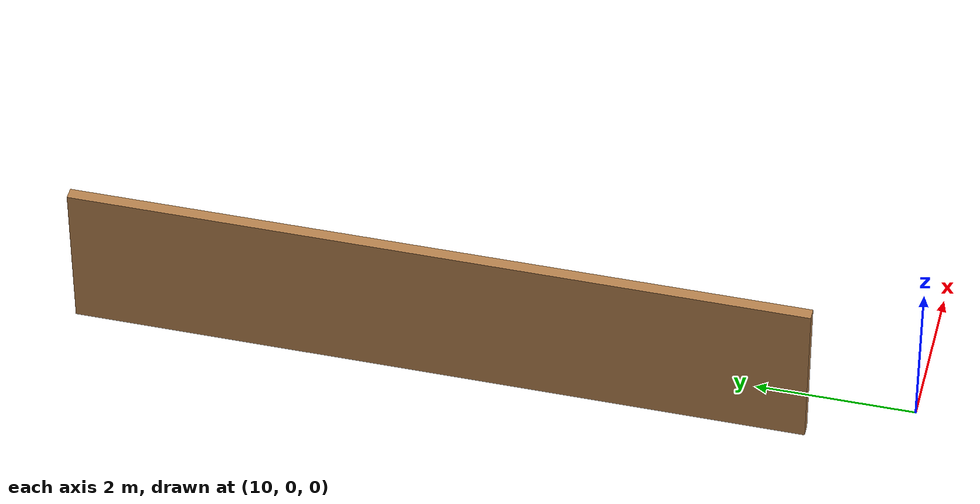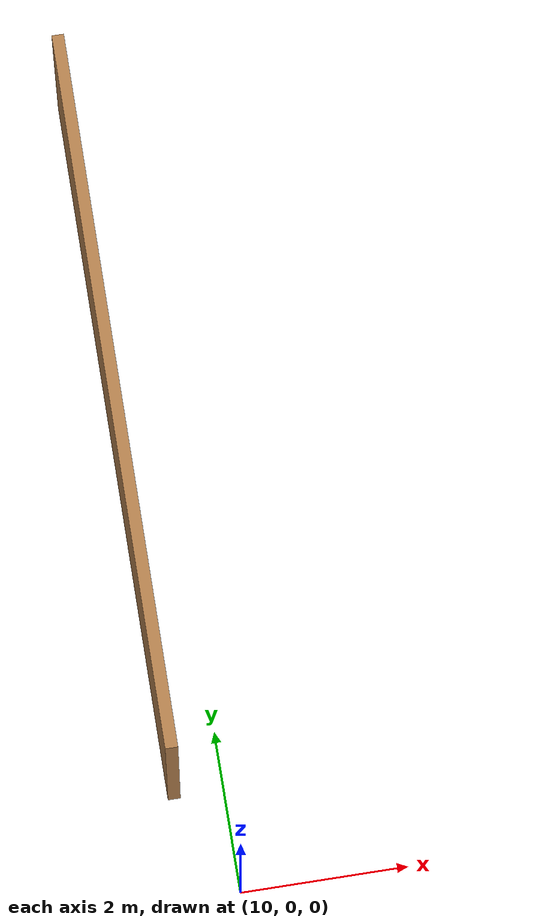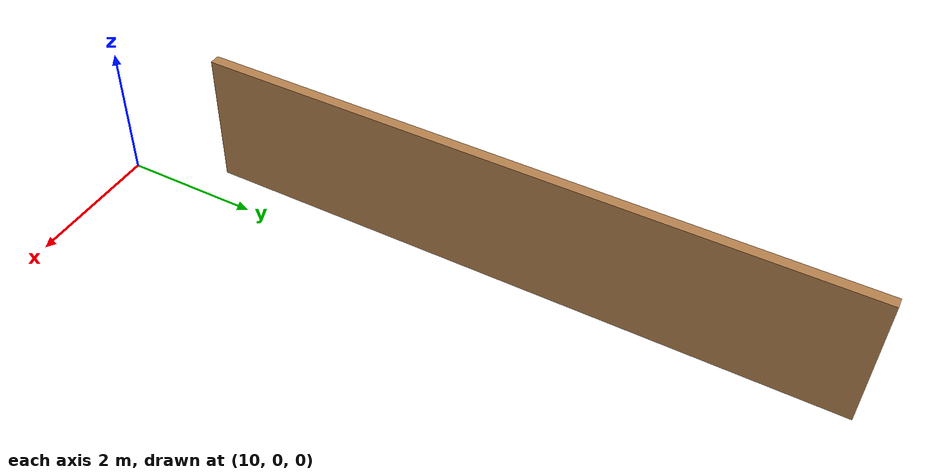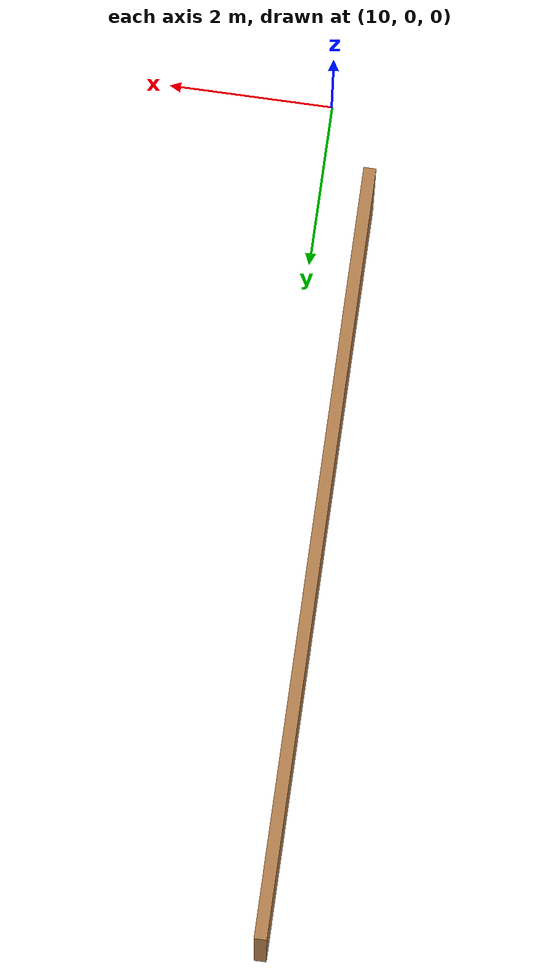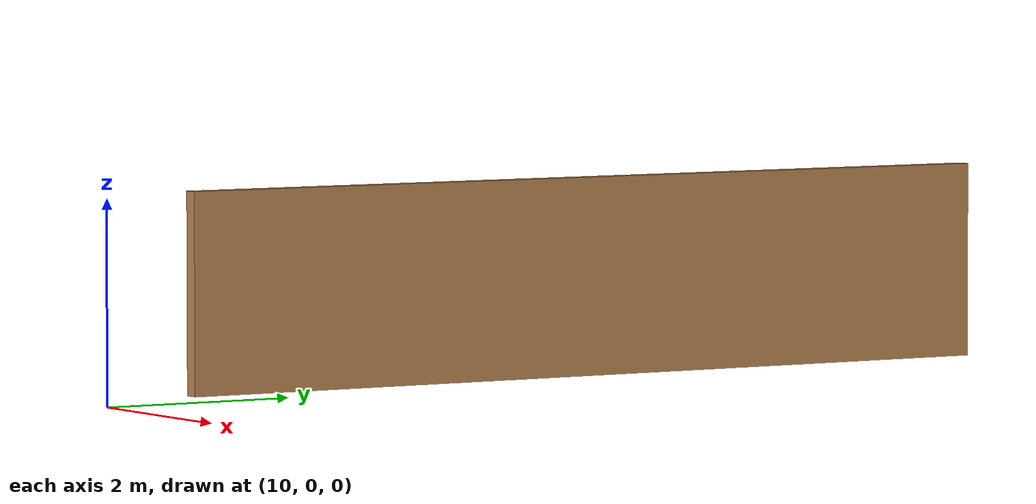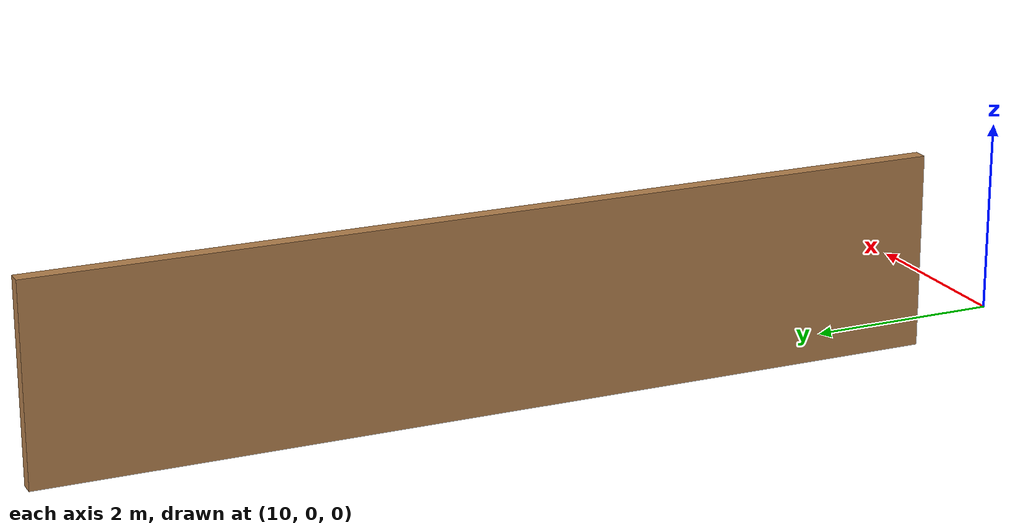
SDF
<?xml version='1.0'?>
<sdf version='1.7'>
  <model name='wall1'>
    <pose>4.737 5.2525 0 0 -0 0</pose>
    <link name='Wall_35'>
      <collision name='Wall_35_Collision'>
        <geometry>
          <box>
            <size>9.25 0.15 2</size>
          </box>
        </geometry>
        <pose>0 0 1 0 -0 0</pose>
      </collision>
      <visual name='Wall_35_Visual'>
        <pose>0 0 1 0 -0 0</pose>
        <geometry>
          <box>
            <size>9.25 0.15 2</size>
          </box>
        </geometry>
        <material>
          <script>
            <uri>file://media/materials/scripts/gazebo.material</uri>
            <name>Gazebo/Wood</name>
          </script>
          <ambient>1 1 1 1</ambient>
        </material>
        <meta>
          <layer>0</layer>
        </meta>
      </visual>
      <pose>4.662 0.6275 0 0 -0 -1.5708</pose>
    </link>
    <static>1</static>
  </model>
</sdf>
